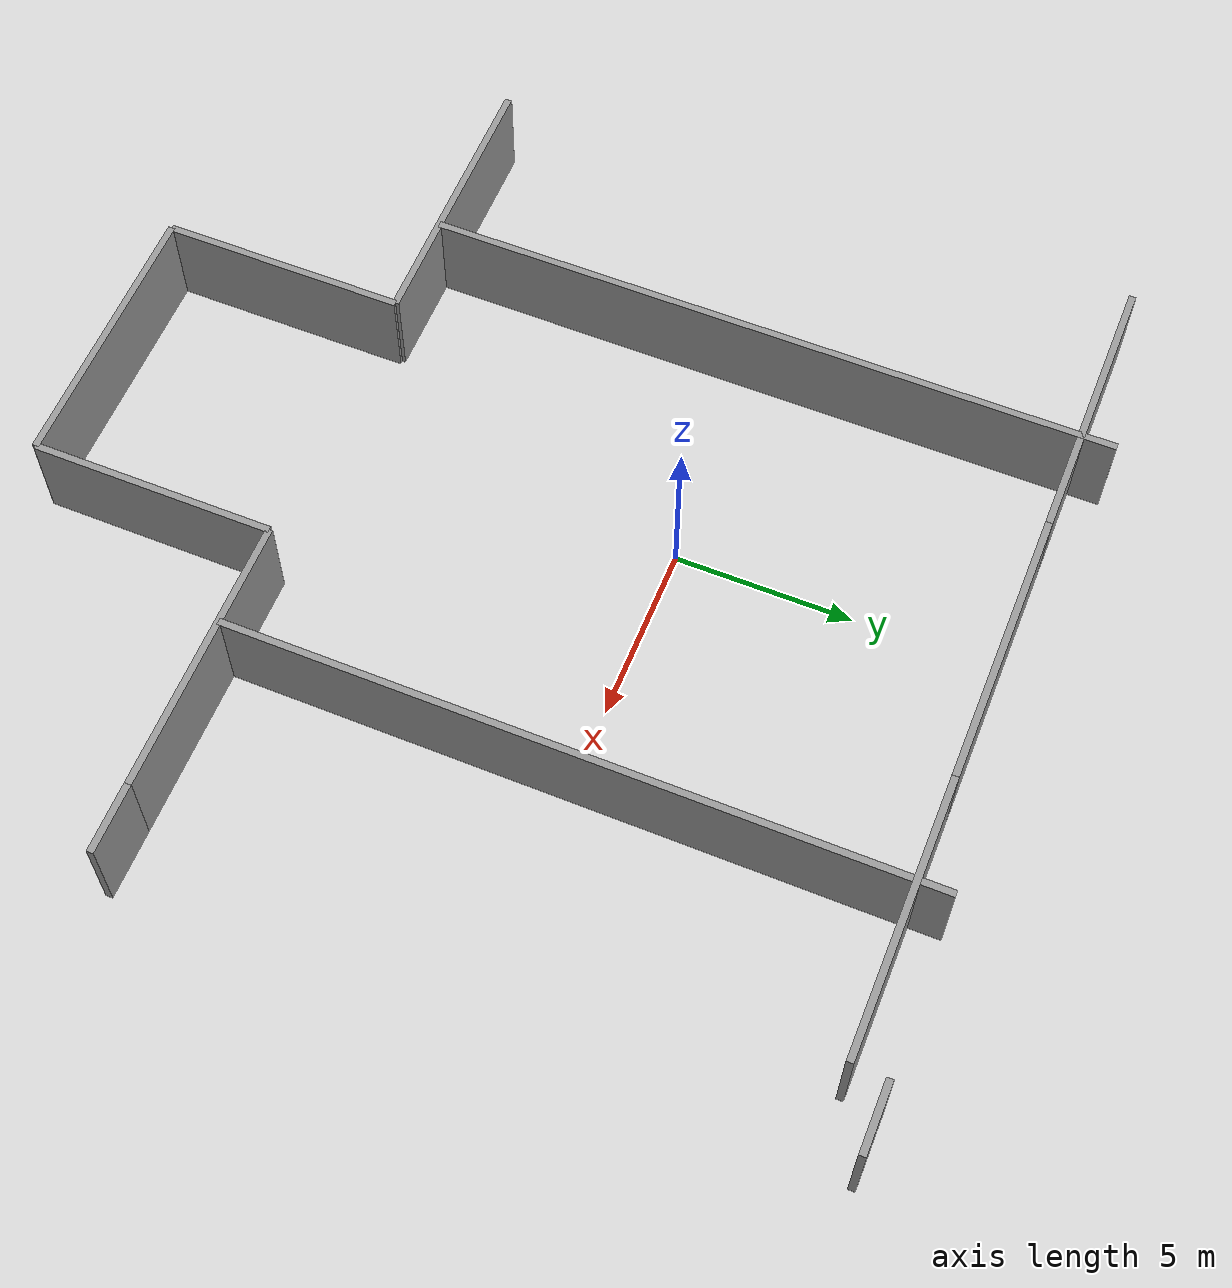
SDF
<?xml version="1.0" ?>
<sdf version="1.5">
  <model name="warehouse_walls">
    <static>true</static>

<!-- Wall 1 -->
    <link name="wall1_link">
      <pose>-7 0 0 0 0 1.57</pose>
      <collision name="collision">
        <geometry>
          <box>
            <size>20 0.2 2.8</size>
          </box>
        </geometry>
      </collision>
      <visual name="wall1_visual">
        <cast_shadows>false</cast_shadows>
        <geometry>
          <box>
            <size>20 0.2 2.8</size>
          </box>
        </geometry>
        <material>
          <script>
            <uri>model://grey_wall/materials/scripts</uri>
            <uri>model://grey_wall/materials/textures</uri>
            <name>vrc/grey_wall</name>
          </script>
        </material>
      </visual>
    </link>

<!-- Wall 2 -->

    <link name="wall2_link1">
      <pose>13 -10 0 0 0 0</pose>
      <collision name="wall2_collision1">
        <geometry>
          <box>
            <size>2 0.2 2.8</size>
          </box>
        </geometry>
      </collision>
      <visual name="wall2_visual1">
        <cast_shadows>false</cast_shadows>
        <geometry>
          <box>
            <size>2 0.2 2.8</size>
          </box>
        </geometry>
        <material>
          <script>
            <uri>model://grey_wall/materials/scripts</uri>
            <uri>model://grey_wall/materials/textures</uri>
            <name>vrc/grey_wall</name>
          </script>
        </material>
      </visual>
    </link>

    <link name="wall2_link2">
      <pose>8 -10 0 0 0 0</pose>
      <collision name="wall2_collision2">
        <geometry>
          <box>
            <size>8 0.2 2.8</size>
          </box>
        </geometry>
      </collision>
      <visual name="wall2_visual2">
        <cast_shadows>false</cast_shadows>
        <geometry>
          <box>
            <size>8 0.2 2.8</size>
          </box>
        </geometry>
        <material>
          <script>
            <uri>model://grey_wall/materials/scripts</uri>
            <uri>model://grey_wall/materials/textures</uri>
            <name>vrc/grey_wall</name>
          </script>
        </material>
      </visual>
    </link>

    <link name="wall2_link3">
      <pose>4 -13.5 0 0 0 1.57</pose>
      <collision name="wall2_collision3">
        <geometry>
          <box>
            <size>7 0.2 2.8</size>
          </box>
        </geometry>
      </collision>
      <visual name="wall2_visual3">
        <cast_shadows>false</cast_shadows>
        <geometry>
          <box>
            <size>7 0.2 2.8</size>
          </box>
        </geometry>
        <material>
          <script>
            <uri>model://grey_wall/materials/scripts</uri>
            <uri>model://grey_wall/materials/textures</uri>
            <name>vrc/grey_wall</name>
          </script>
        </material>
      </visual>
    </link>

    <link name="wall2_link4">
      <pose>0 -17 0 0 0 0</pose>
      <collision name="wall2_collision4">
        <geometry>
          <box>
            <size>8 0.2 2.8</size>
          </box>
        </geometry>
      </collision>
      <visual name="wall2_visual4">
        <cast_shadows>false</cast_shadows>
        <geometry>
          <box>
            <size>8 0.2 2.8</size>
          </box>
        </geometry>
        <material>
          <script>
            <uri>model://grey_wall/materials/scripts</uri>
            <uri>model://grey_wall/materials/textures</uri>
            <name>vrc/grey_wall</name>
          </script>
        </material>
      </visual>
    </link>

    <link name="wall2_link5">
      <pose>-4 -13.5 0 0 0 1.57</pose>
      <collision name="wall2_collision5">
        <geometry>
          <box>
            <size>7 0.2 2.8</size>
          </box>
        </geometry>
      </collision>
      <visual name="wall2_visual5">
        <cast_shadows>false</cast_shadows>
        <geometry>
          <box>
            <size>7 0.2 2.8</size>
          </box>
        </geometry>
        <material>
          <script>
            <uri>model://grey_wall/materials/scripts</uri>
            <uri>model://grey_wall/materials/textures</uri>
            <name>vrc/grey_wall</name>
          </script>
        </material>
      </visual>
    </link>

    <link name="wall2_link6">
      <pose>-8 -10 0 0 0 0</pose>
      <collision name="wall2_collision6">
        <geometry>
          <box>
            <size>8 0.2 2.8</size>
          </box>
        </geometry>
      </collision>
      <visual name="wall2_visual6">
        <cast_shadows>false</cast_shadows>
        <geometry>
          <box>
            <size>8 0.2 2.8</size>
          </box>
        </geometry>
        <material>
          <script>
            <uri>model://grey_wall/materials/scripts</uri>
            <uri>model://grey_wall/materials/textures</uri>
            <name>vrc/grey_wall</name>
          </script>
        </material>
      </visual>
    </link>

<!-- Wall 3 -->

    <link name="wall3_link1">
      <pose>13 10 0 0 0 0</pose>
      <collision name="wall2_collision1">
        <geometry>
          <box>
            <size>2 0.2 2.8</size>
          </box>
        </geometry>
      </collision>
      <visual name="wall3_visual1">
        <cast_shadows>false</cast_shadows>
        <geometry>
          <box>
            <size>2 0.2 2.8</size>
          </box>
        </geometry>
        <material>
          <script>
            <uri>model://grey_wall/materials/scripts</uri>
            <uri>model://grey_wall/materials/textures</uri>
            <name>vrc/grey_wall</name>
          </script>
        </material>
      </visual>
    </link>

    <link name="wall3_link2">
      <pose>8 9 0 0 0 0</pose>
      <collision name="wall3_collision2">
        <geometry>
          <box>
            <size>8 0.2 2.8</size>
          </box>
        </geometry>
      </collision>
      <visual name="wall3_visual2">
        <cast_shadows>false</cast_shadows>
        <geometry>
          <box>
            <size>8 0.2 2.8</size>
          </box>
        </geometry>
        <material>
          <script>
            <uri>model://grey_wall/materials/scripts</uri>
            <uri>model://grey_wall/materials/textures</uri>
            <name>vrc/grey_wall</name>
          </script>
        </material>
      </visual>
    </link>

    <link name="wall3_link4">
      <pose>0 9 0 0 0 0</pose>
      <collision name="wall3_collision4">
        <geometry>
          <box>
            <size>8 0.2 2.8</size>
          </box>
        </geometry>
      </collision>
      <visual name="wall3_visual4">
        <cast_shadows>false</cast_shadows>
        <geometry>
          <box>
            <size>8 0.2 2.8</size>
          </box>
        </geometry>
        <material>
          <script>
            <uri>model://grey_wall/materials/scripts</uri>
            <uri>model://grey_wall/materials/textures</uri>
            <name>vrc/grey_wall</name>
          </script>
        </material>
      </visual>
    </link>

    <link name="wall3_link6">
      <pose>-8 9 0 0 0 0</pose>
      <collision name="wall3_collision6">
        <geometry>
          <box>
            <size>8 0.2 2.8</size>
          </box>
        </geometry>
      </collision>
      <visual name="wall3_visual6">
        <cast_shadows>false</cast_shadows>
        <geometry>
          <box>
            <size>8 0.2 2.8</size>
          </box>
        </geometry>
        <material>
          <script>
            <uri>model://grey_wall/materials/scripts</uri>
            <uri>model://grey_wall/materials/textures</uri>
            <name>vrc/grey_wall</name>
          </script>
        </material>
      </visual>
    </link>

<!-- Wall 4 -->
    <link name="wall4_link">
      <pose>7 0 0 0 0 1.57</pose>
      <collision name="wall4_collision">
        <geometry>
          <box>
            <size>20 0.2 2.8</size>
          </box>
        </geometry>
      </collision>
      <visual name="wall4_visual">
        <cast_shadows>false</cast_shadows>
        <geometry>
          <box>
            <size>20 0.2 2.8</size>
          </box>
        </geometry>
        <material>
          <script>
            <uri>model://grey_wall/materials/scripts</uri>
            <uri>model://grey_wall/materials/textures</uri>
            <name>vrc/grey_wall</name>
          </script>
        </material>
      </visual>
    </link>

  </model>
</sdf>
